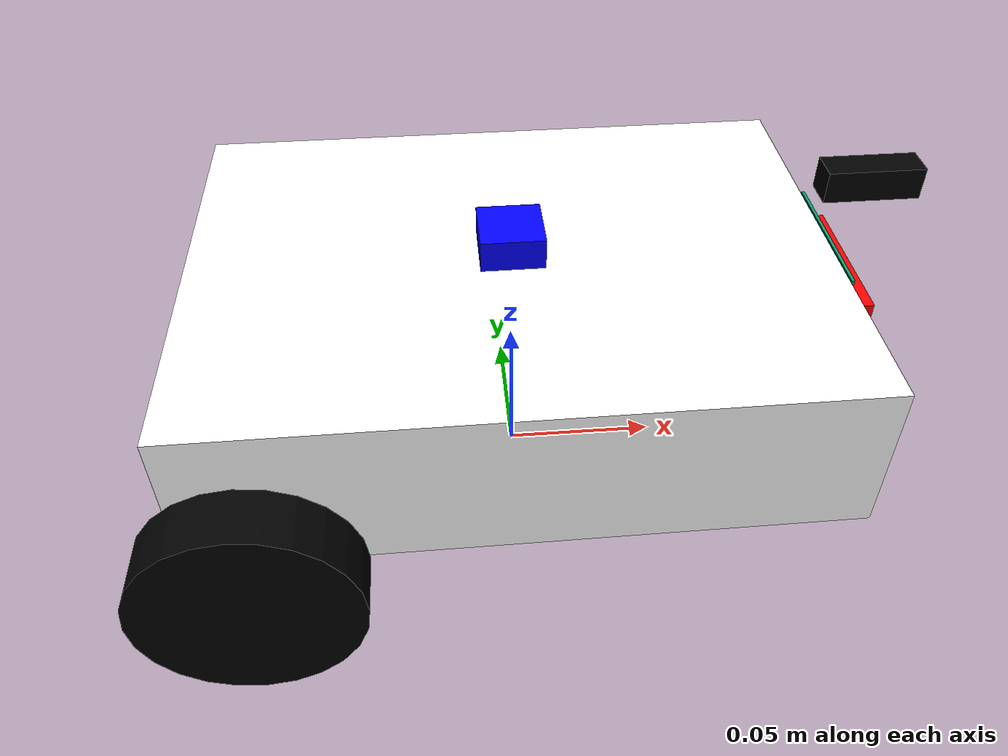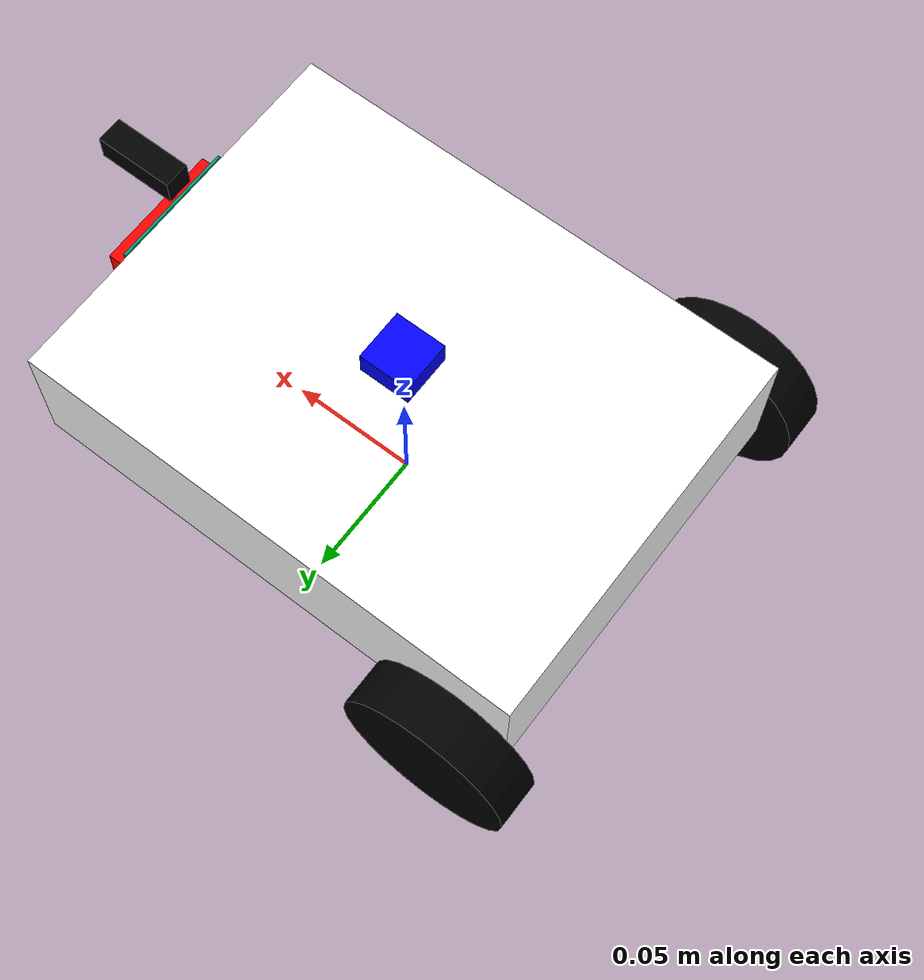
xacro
<?xml version="1.0"?>
<robot xmlns:xacro="http://www.ros.org/wiki/xacro" name="dna_bot">
  <xacro:arg name="prefix" default="bot_0"/>
  <xacro:arg name="bot_marker_id" default="0"/>
  <xacro:property name="prefix" value="$(arg prefix)"/>
  <xacro:property name="bot_marker_id" value="$(arg bot_marker_id)"/>

  <xacro:include filename="$(find dna_swarm_bot)/description/robot_core.xacro"/>
  <xacro:include filename="$(find dna_swarm_bot)/description/camera.xacro"/>
  <xacro:include filename="$(find dna_swarm_bot)/description/gazebo_control.xacro"/>

  <xacro:webcam name="camera" prefix="${prefix}"/>
</robot>

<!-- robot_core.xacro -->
<robot xmlns:xacro="http://www.ros.org/wiki/xacro">
  <xacro:property name="chassis_length" value="0.2"/>
  <xacro:property name="chassis_width" value="0.15"/>
  <xacro:property name="chassis_height" value="0.05"/>
  <xacro:property name="wheel_radius" value="0.033"/>
  <xacro:property name="wheel_width" value="0.018"/>
  <xacro:property name="wheel_ygap" value="0.01"/>
  <xacro:property name="wheel_zoff" value="0.0"/>
  <xacro:property name="wheel_xoff" value="0.08"/>
  <xacro:property name="caster_xoff" value="0.06"/>
  <xacro:property name="chassis_mass" value="0.5"/>
  <xacro:property name="wheel_mass" value="0.1"/>
  <xacro:property name="caster_mass" value="0.05"/>

  <material name="white"><color rgba="1 1 1 1"/></material>
  <material name="black"><color rgba="0 0 0 1"/></material>
  <material name="blue"><color rgba="0 0 1 1"/></material>
  <material name="red"><color rgba="1 0 0 1"/></material>
  <material name="green"><color rgba="0 1 0 1"/></material>
  <material name="gray"><color rgba="0.5 0.5 0.5 1"/></material>

  <link name="base_footprint"/>

  <joint name="base_joint" type="fixed">
    <parent link="base_footprint"/>
    <child link="base_link"/>
    <origin xyz="0 0 ${wheel_radius}" rpy="0 0 0"/>
  </joint>

  <link name="base_link">
    <visual>
      <origin xyz="0 0 ${chassis_height/2}"/>
      <geometry><box size="${chassis_length} ${chassis_width} ${chassis_height}"/></geometry>
      <material name="white"/>
    </visual>
    <collision>
      <origin xyz="0 0 ${chassis_height/2}"/>
      <geometry><box size="${chassis_length} ${chassis_width} ${chassis_height}"/></geometry>
    </collision>
    <inertial>
      <origin xyz="0 0 ${chassis_height/2}"/>
      <mass value="${chassis_mass}"/>
      <inertia ixx="${chassis_mass*(chassis_width**2 + chassis_height**2)/12}" ixy="0" ixz="0"
               iyy="${chassis_mass*(chassis_length**2 + chassis_height**2)/12}" iyz="0"
               izz="${chassis_mass*(chassis_length**2 + chassis_width**2)/12}"/>
    </inertial>
  </link>

  <!-- VISIBLE ARUCO MARKER ON FRONT -->
  <link name="aruco_marker_link">
    <visual>
      <origin xyz="0 0 0" rpy="0 0 0"/>
      <geometry><box size="0.001 0.05 0.05"/></geometry>
      <material name="aruco_mat_${bot_marker_id}">
        <script>
          <uri>package://dna_swarm_bot/description/materials/scripts</uri>
          <uri>package://dna_swarm_bot/description/textures</uri>
          <name>ArucoMarker/Bot${bot_marker_id}</name>
        </script>
      </material>
    </visual>
    <collision>
      <origin xyz="0 0 0"/>
      <geometry><box size="0.001 0.05 0.05"/></geometry>
    </collision>
  </link>

  <joint name="aruco_marker_joint" type="fixed">
    <parent link="base_link"/>
    <child link="aruco_marker_link"/>
    <origin xyz="${chassis_length/2 + 0.001} 0 ${chassis_height/2}" rpy="0 0 0"/>
  </joint>

  <xacro:macro name="wheel" params="prefix x_reflect y_reflect">
    <link name="${prefix}_wheel">
      <visual>
        <origin xyz="0 0 0" rpy="${pi/2} 0 0"/>
        <geometry><cylinder radius="${wheel_radius}" length="${wheel_width}"/></geometry>
        <material name="black"/>
      </visual>
      <collision>
        <origin xyz="0 0 0" rpy="${pi/2} 0 0"/>
        <geometry><cylinder radius="${wheel_radius}" length="${wheel_width}"/></geometry>
      </collision>
      <inertial>
        <origin xyz="0 0 0" rpy="${pi/2} 0 0"/>
        <mass value="${wheel_mass}"/>
        <inertia ixx="${wheel_mass*(3*wheel_radius**2 + wheel_width**2)/12}" ixy="0" ixz="0"
                 iyy="${wheel_mass*(3*wheel_radius**2 + wheel_width**2)/12}" iyz="0"
                 izz="${wheel_mass*wheel_radius**2/2}"/>
      </inertial>
    </link>
    <joint name="${prefix}_wheel_joint" type="continuous">
      <parent link="base_link"/>
      <child link="${prefix}_wheel"/>
      <origin xyz="${x_reflect*wheel_xoff} ${y_reflect*(chassis_width/2+wheel_ygap)} ${wheel_zoff}" rpy="0 0 0"/>
      <axis xyz="0 1 0"/>
    </joint>
  </xacro:macro>

  <xacro:wheel prefix="left" x_reflect="-1" y_reflect="1"/>
  <xacro:wheel prefix="right" x_reflect="-1" y_reflect="-1"/>

  <link name="caster_wheel">
    <visual><geometry><sphere radius="0.02"/></geometry><material name="black"/></visual>
    <collision><geometry><sphere radius="0.02"/></geometry></collision>
    <inertial>
      <mass value="${caster_mass}"/>
      <inertia ixx="${2*caster_mass*0.02**2/5}" ixy="0" ixz="0"
               iyy="${2*caster_mass*0.02**2/5}" iyz="0"
               izz="${2*caster_mass*0.02**2/5}"/>
    </inertial>
  </link>
  <joint name="caster_wheel_joint" type="fixed">
    <parent link="base_link"/>
    <child link="caster_wheel"/>
    <origin xyz="${caster_xoff} 0 ${-wheel_radius+0.02}" rpy="0 0 0"/>
  </joint>

  <link name="imu_link">
    <visual><geometry><box size="0.02 0.02 0.01"/></geometry><material name="blue"/></visual>
  </link>
  <joint name="imu_joint" type="fixed">
    <parent link="base_link"/>
    <child link="imu_link"/>
    <origin xyz="0 0 ${chassis_height+0.005}" rpy="0 0 0"/>
  </joint>

  <link name="face_link">
    <visual><geometry><box size="0.01 0.05 0.03"/></geometry><material name="red"/></visual>
  </link>
  <joint name="face_joint" type="fixed">
    <parent link="base_link"/>
    <child link="face_link"/>
    <origin xyz="${chassis_length/2+0.005} 0 ${chassis_height/2}" rpy="0 0 0"/>
  </joint>
</robot>

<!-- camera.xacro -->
<robot xmlns:xacro="http://www.ros.org/wiki/xacro">
  <xacro:macro name="webcam" params="name prefix">
    <link name="${name}_link">
      <visual>
        <origin xyz="0 0 0" rpy="0 0 0"/>
        <geometry><box size="0.03 0.01 0.01"/></geometry>
        <material name="black"/>
      </visual>
    </link>
    <joint name="${name}_joint" type="fixed">
      <parent link="base_link"/>
      <child link="${name}_link"/>
      <origin xyz="0.11 0 0.07" rpy="0 0 0"/>
    </joint>
    <link name="${name}_link_optical"/>
    <joint name="${name}_optical_joint" type="fixed">
      <parent link="${name}_link"/>
      <child link="${name}_link_optical"/>
      <origin xyz="0 0 0" rpy="${-pi/2} 0 ${-pi/2}"/>
    </joint>
    <gazebo reference="${name}_link">
      <sensor type="camera" name="${prefix}_${name}">
        <update_rate>30.0</update_rate>
        <camera name="${prefix}_${name}">
          <horizontal_fov>1.047</horizontal_fov>
          <image><width>640</width><height>480</height><format>R8G8B8</format></image>
          <clip><near>0.05</near><far>8</far></clip>
          <noise><type>gaussian</type><mean>0.0</mean><stddev>0.007</stddev></noise>
        </camera>
        <plugin name="${prefix}_${name}_controller" filename="libgazebo_ros_camera.so">
          <ros>
            <remapping>image_raw:=${name}/image_raw</remapping>
            <remapping>camera_info:=${name}/camera_info</remapping>
            <namespace>/${prefix}</namespace>
          </ros>
          <camera_name>${name}</camera_name>
          <frame_name>${name}_link_optical</frame_name>
          <hack_baseline>0.07</hack_baseline>
        </plugin>
      </sensor>
    </gazebo>
  </xacro:macro>
</robot>
